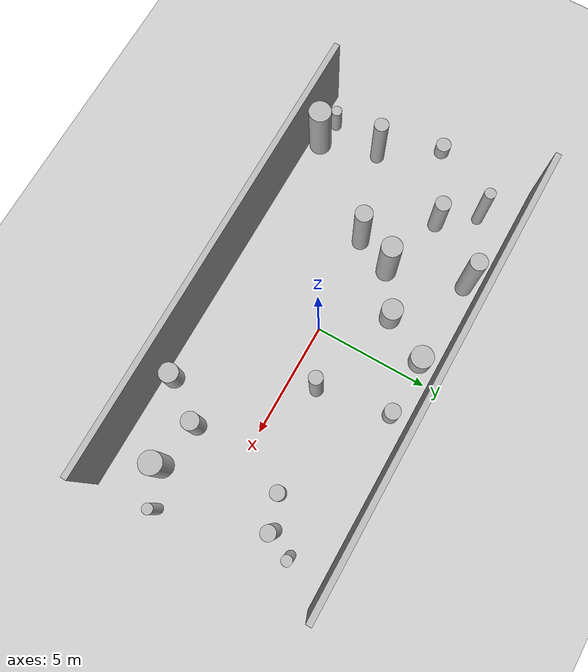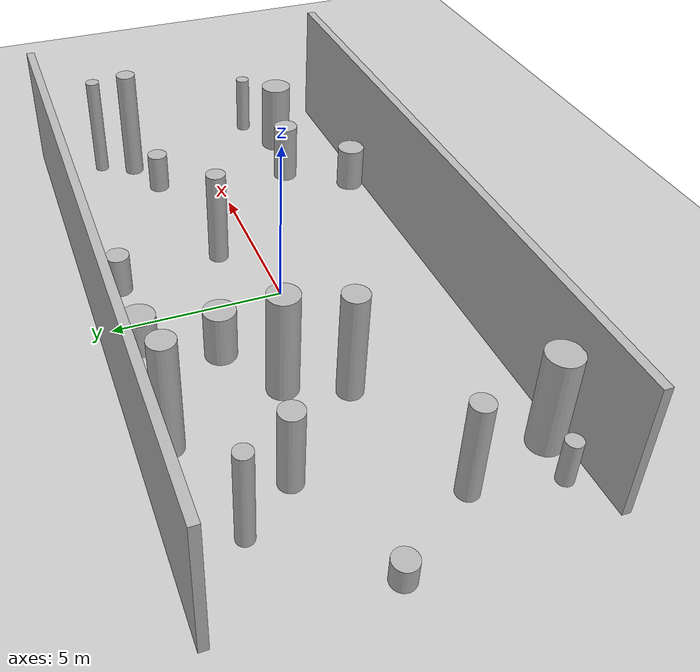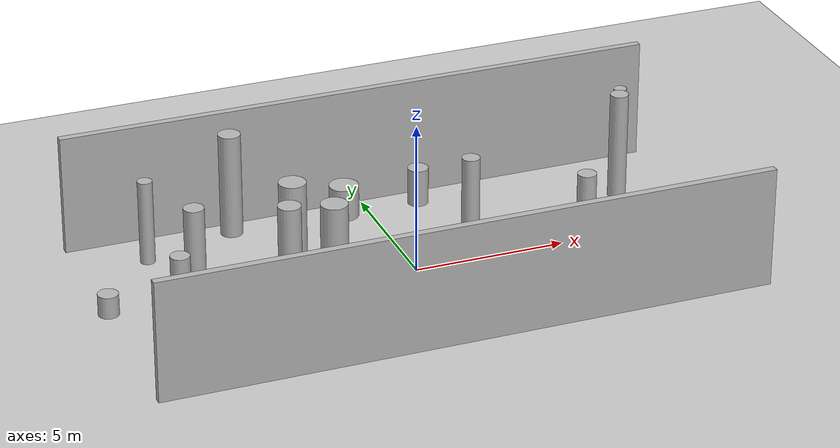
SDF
<?xml version="1.0"?>
<sdf version="1.4">
  <world name="default">
    <gui>
      <camera name="user_camera">
        <pose>-20 -30 40 0 0.66 0.83</pose>
      </camera>
    </gui>
    <include>
      <uri>model://ground_plane</uri>
    </include>
    <include>
      <uri>model://sun</uri>
    </include>
    <scene>
      <shadows>0</shadows>
    </scene>
    <model name="forest">
      <static>true</static>
      <link name="cylinder0">
        <pose>8.111567743906207 -2.7408718885510694 1.161545408357259 0 0 0 </pose>
        <visual name="visual">
          <geometry>
            <cylinder>
              <radius>0.4850528627194381</radius>
              <length>2.323090816714518</length>
            </cylinder>
          </geometry>
        </visual>
        <collision name="collision">
          <geometry>
            <cylinder>
              <radius>0.4850528627194381</radius>
              <length>2.323090816714518</length>
            </cylinder>
          </geometry>
          <max_contacts>0</max_contacts>
        </collision>
      </link>
      <link name="cylinder1">
        <pose>-3.6530612971258636 1.2616063991189979 1.593968074779267 0 0 0 </pose>
        <visual name="visual">
          <geometry>
            <cylinder>
              <radius>0.4431648269889622</radius>
              <length>3.187936149558534</length>
            </cylinder>
          </geometry>
        </visual>
        <collision name="collision">
          <geometry>
            <cylinder>
              <radius>0.4431648269889622</radius>
              <length>3.187936149558534</length>
            </cylinder>
          </geometry>
          <max_contacts>0</max_contacts>
        </collision>
      </link>
      <link name="cylinder2">
        <pose>-4.628619218278902 4.522711436004146 1.76903811372791 0 0 0 </pose>
        <visual name="visual">
          <geometry>
            <cylinder>
              <radius>0.36466225557982845</radius>
              <length>3.53807622745582</length>
            </cylinder>
          </geometry>
        </visual>
        <collision name="collision">
          <geometry>
            <cylinder>
              <radius>0.36466225557982845</radius>
              <length>3.53807622745582</length>
            </cylinder>
          </geometry>
          <max_contacts>0</max_contacts>
        </collision>
      </link>
      <link name="cylinder3">
        <pose>-0.8263023797401647 4.37723357276672 0.5470470346036024 0 0 0 </pose>
        <visual name="visual">
          <geometry>
            <cylinder>
              <radius>0.4904948936158197</radius>
              <length>1.0940940692072048</length>
            </cylinder>
          </geometry>
        </visual>
        <collision name="collision">
          <geometry>
            <cylinder>
              <radius>0.4904948936158197</radius>
              <length>1.0940940692072048</length>
            </cylinder>
          </geometry>
          <max_contacts>0</max_contacts>
        </collision>
      </link>
      <link name="cylinder4">
        <pose>-7.509550527419058 -4.1599293973071925 1.4769673865629174 0 0 0 </pose>
        <visual name="visual">
          <geometry>
            <cylinder>
              <radius>0.4841624669352765</radius>
              <length>2.9539347731258347</length>
            </cylinder>
          </geometry>
        </visual>
        <collision name="collision">
          <geometry>
            <cylinder>
              <radius>0.4841624669352765</radius>
              <length>2.9539347731258347</length>
            </cylinder>
          </geometry>
          <max_contacts>0</max_contacts>
        </collision>
      </link>
      <link name="cylinder5">
        <pose>-8.672162377321689 -3.982840079196653 0.6708265065340745 0 0 0 </pose>
        <visual name="visual">
          <geometry>
            <cylinder>
              <radius>0.23558737268852875</radius>
              <length>1.341653013068149</length>
            </cylinder>
          </geometry>
        </visual>
        <collision name="collision">
          <geometry>
            <cylinder>
              <radius>0.23558737268852875</radius>
              <length>1.341653013068149</length>
            </cylinder>
          </geometry>
          <max_contacts>0</max_contacts>
        </collision>
      </link>
      <link name="cylinder6">
        <pose>8.067999685954103 2.50483742175555 1.827838113201636 0 0 0 </pose>
        <visual name="visual">
          <geometry>
            <cylinder>
              <radius>0.3026538923362695</radius>
              <length>3.655676226403272</length>
            </cylinder>
          </geometry>
        </visual>
        <collision name="collision">
          <geometry>
            <cylinder>
              <radius>0.3026538923362695</radius>
              <length>3.655676226403272</length>
            </cylinder>
          </geometry>
          <max_contacts>0</max_contacts>
        </collision>
      </link>
      <link name="cylinder7">
        <pose>1.7555259479090584 4.358863924303138 0.6328705662715046 0 0 0 </pose>
        <visual name="visual">
          <geometry>
            <cylinder>
              <radius>0.34438885834665034</radius>
              <length>1.2657411325430092</length>
            </cylinder>
          </geometry>
        </visual>
        <collision name="collision">
          <geometry>
            <cylinder>
              <radius>0.34438885834665034</radius>
              <length>1.2657411325430092</length>
            </cylinder>
          </geometry>
          <max_contacts>0</max_contacts>
        </collision>
      </link>
      <link name="cylinder8">
        <pose>-7.729222148790599 3.6288618805925417 1.4297827228415858 0 0 0 </pose>
        <visual name="visual">
          <geometry>
            <cylinder>
              <radius>0.24198772293768317</radius>
              <length>2.8595654456831716</length>
            </cylinder>
          </geometry>
        </visual>
        <collision name="collision">
          <geometry>
            <cylinder>
              <radius>0.24198772293768317</radius>
              <length>2.8595654456831716</length>
            </cylinder>
          </geometry>
          <max_contacts>0</max_contacts>
        </collision>
      </link>
      <link name="cylinder9">
        <pose>-4.3110775862158075 -0.3543036068906318 1.6339480296007016 0 0 0 </pose>
        <visual name="visual">
          <geometry>
            <cylinder>
              <radius>0.3713141479355955</radius>
              <length>3.2678960592014032</length>
            </cylinder>
          </geometry>
        </visual>
        <collision name="collision">
          <geometry>
            <cylinder>
              <radius>0.3713141479355955</radius>
              <length>3.2678960592014032</length>
            </cylinder>
          </geometry>
          <max_contacts>0</max_contacts>
        </collision>
      </link>
      <link name="cylinder10">
        <pose>-6.608012080886512 2.1399232124969085 1.2095423119331137 0 0 0 </pose>
        <visual name="visual">
          <geometry>
            <cylinder>
              <radius>0.3359026026407252</radius>
              <length>2.4190846238662274</length>
            </cylinder>
          </geometry>
        </visual>
        <collision name="collision">
          <geometry>
            <cylinder>
              <radius>0.3359026026407252</radius>
              <length>2.4190846238662274</length>
            </cylinder>
          </geometry>
          <max_contacts>0</max_contacts>
        </collision>
      </link>
      <link name="cylinder11">
        <pose>-1.8705081603623892 2.392517511040337 0.779937456572136 0 0 0 </pose>
        <visual name="visual">
          <geometry>
            <cylinder>
              <radius>0.45464511074240554</radius>
              <length>1.559874913144272</length>
            </cylinder>
          </geometry>
        </visual>
        <collision name="collision">
          <geometry>
            <cylinder>
              <radius>0.45464511074240554</radius>
              <length>1.559874913144272</length>
            </cylinder>
          </geometry>
          <max_contacts>0</max_contacts>
        </collision>
      </link>
      <link name="cylinder12">
        <pose>6.028806077315121 -2.3443085066064473 0.9607046690722756 0 0 0 </pose>
        <visual name="visual">
          <geometry>
            <cylinder>
              <radius>0.3819727582864915</radius>
              <length>1.9214093381445512</length>
            </cylinder>
          </geometry>
        </visual>
        <collision name="collision">
          <geometry>
            <cylinder>
              <radius>0.3819727582864915</radius>
              <length>1.9214093381445512</length>
            </cylinder>
          </geometry>
          <max_contacts>0</max_contacts>
        </collision>
      </link>
      <link name="cylinder13">
        <pose>2.319238997533022 1.1827904478104934 1.5010160522906437 0 0 0 </pose>
        <visual name="visual">
          <geometry>
            <cylinder>
              <radius>0.29372502823110713</radius>
              <length>3.0020321045812874</length>
            </cylinder>
          </geometry>
        </visual>
        <collision name="collision">
          <geometry>
            <cylinder>
              <radius>0.29372502823110713</radius>
              <length>3.0020321045812874</length>
            </cylinder>
          </geometry>
          <max_contacts>0</max_contacts>
        </collision>
      </link>
      <link name="cylinder14">
        <pose>-9.852886346522595 0.7844434147908439 0.3601560922236667 0 0 0 </pose>
        <visual name="visual">
          <geometry>
            <cylinder>
              <radius>0.33261821631137767</radius>
              <length>0.7203121844473334</length>
            </cylinder>
          </geometry>
        </visual>
        <collision name="collision">
          <geometry>
            <cylinder>
              <radius>0.33261821631137767</radius>
              <length>0.7203121844473334</length>
            </cylinder>
          </geometry>
          <max_contacts>0</max_contacts>
        </collision>
      </link>
      <link name="cylinder15">
        <pose>9.628406819764109 -1.9964088689438797 0.9889647102130725 0 0 0 </pose>
        <visual name="visual">
          <geometry>
            <cylinder>
              <radius>0.22611773431838417</radius>
              <length>1.977929420426145</length>
            </cylinder>
          </geometry>
        </visual>
        <collision name="collision">
          <geometry>
            <cylinder>
              <radius>0.22611773431838417</radius>
              <length>1.977929420426145</length>
            </cylinder>
          </geometry>
          <max_contacts>0</max_contacts>
        </collision>
      </link>
      <link name="cylinder16">
        <pose>8.577315456356583 3.535937088103422 1.6583208690385047 0 0 0 </pose>
        <visual name="visual">
          <geometry>
            <cylinder>
              <radius>0.21560837879614206</radius>
              <length>3.3166417380770095</length>
            </cylinder>
          </geometry>
        </visual>
        <collision name="collision">
          <geometry>
            <cylinder>
              <radius>0.21560837879614206</radius>
              <length>3.3166417380770095</length>
            </cylinder>
          </geometry>
          <max_contacts>0</max_contacts>
        </collision>
      </link>
      <link name="cylinder17">
        <pose>6.733223100509697 1.942594625124066 0.6393380759620898 0 0 0 </pose>
        <visual name="visual">
          <geometry>
            <cylinder>
              <radius>0.31841152828658803</radius>
              <length>1.2786761519241796</length>
            </cylinder>
          </geometry>
        </visual>
        <collision name="collision">
          <geometry>
            <cylinder>
              <radius>0.31841152828658803</radius>
              <length>1.2786761519241796</length>
            </cylinder>
          </geometry>
          <max_contacts>0</max_contacts>
        </collision>
      </link>
      <link name="cylinder18">
        <pose>4.795755017962692 -4.2241875617731806 0.7120100977854937 0 0 0 </pose>
        <visual name="visual">
          <geometry>
            <cylinder>
              <radius>0.42402786818455396</radius>
              <length>1.4240201955709875</length>
            </cylinder>
          </geometry>
        </visual>
        <collision name="collision">
          <geometry>
            <cylinder>
              <radius>0.42402786818455396</radius>
              <length>1.4240201955709875</length>
            </cylinder>
          </geometry>
          <max_contacts>0</max_contacts>
        </collision>
      </link>
      <link name="cylinder19">
        <pose>-8.228781034843191 -1.6422978463397708 1.4701004560710957 0 0 0 </pose>
        <visual name="visual">
          <geometry>
            <cylinder>
              <radius>0.30976025187706924</radius>
              <length>2.9402009121421915</length>
            </cylinder>
          </geometry>
        </visual>
        <collision name="collision">
          <geometry>
            <cylinder>
              <radius>0.30976025187706924</radius>
              <length>2.9402009121421915</length>
            </cylinder>
          </geometry>
          <max_contacts>0</max_contacts>
        </collision>
      </link>
      <link name="cube0">
        <pose>0 5.25 2.0 0 0 0 </pose>
        <visual name="visual">
          <geometry>
            <box>
              <size>20 0.25 4.0</size>
            </box>
          </geometry>
        </visual>
        <collision name="collision">
          <geometry>
            <box>
              <size>20 0.25 4.0</size>
            </box>
          </geometry>
          <max_contacts>0</max_contacts>
        </collision>
      </link>
      <link name="cube1">
        <pose>0 -4.75 2.0 0 0 0 </pose>
        <visual name="visual">
          <geometry>
            <box>
              <size>20 0.25 4.0</size>
            </box>
          </geometry>
        </visual>
        <collision name="collision">
          <geometry>
            <box>
              <size>20 0.25 4.0</size>
            </box>
          </geometry>
          <max_contacts>0</max_contacts>
        </collision>
      </link>
    </model>
    <!-- Plugins -->
    <plugin name="gazebo_octomap" filename="librotors_gazebo_octomap_plugin.so"/>
    <plugin name="ros_interface_plugin" filename="librotors_gazebo_ros_interface_plugin.so"/>
    <!-- Physics -->
    <physics name="default_physics" default="0" type="ode">
      <max_step_size>0.004</max_step_size>
      <real_time_factor>1</real_time_factor>
      <real_time_update_rate>250</real_time_update_rate>
      <gravity>0 0 -9.8</gravity>
      <magnetic_field>6e-06 2.3e-05 -4.2e-05</magnetic_field>
      <ode>
        <solver>
          <type>quick</type>
          <iters>1000</iters>
          <sor>1.3</sor>
          <use_dynamic_moi_rescaling>0</use_dynamic_moi_rescaling>
        </solver>
        <constraints>
          <cfm>0</cfm>
          <erp>0.2</erp>
          <contact_max_correcting_vel>100</contact_max_correcting_vel>
          <contact_surface_layer>0.001</contact_surface_layer>
        </constraints>
      </ode>
    </physics>
  </world>
</sdf>
